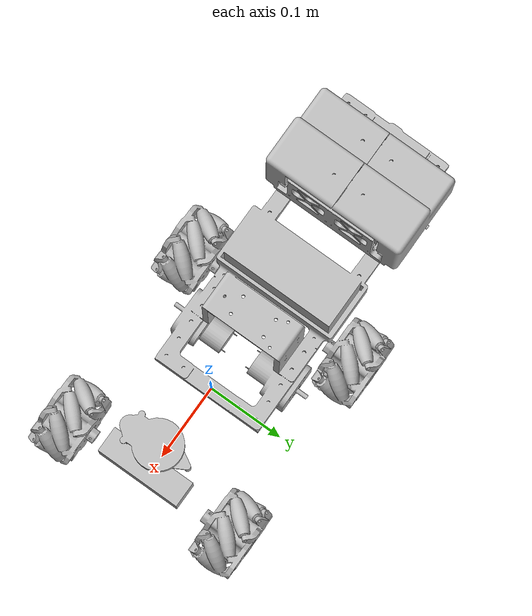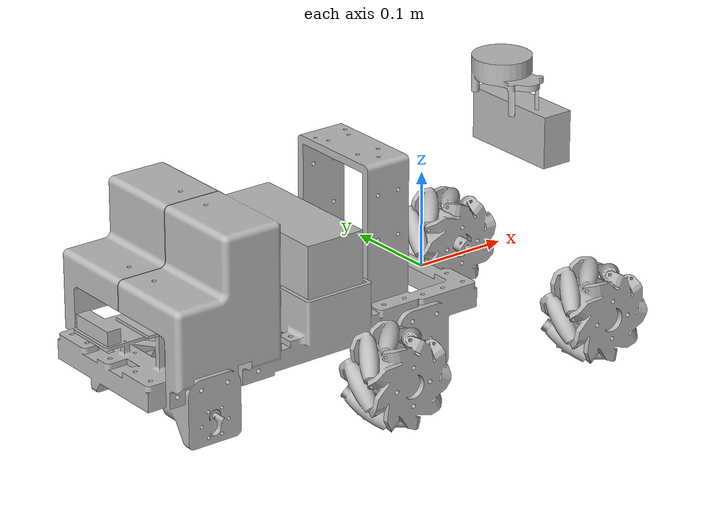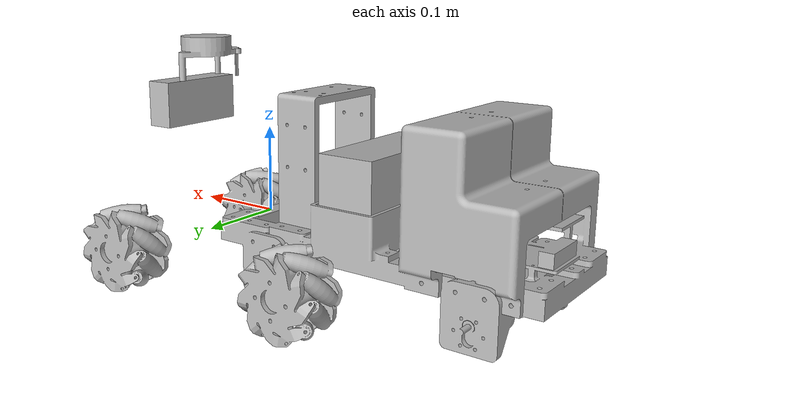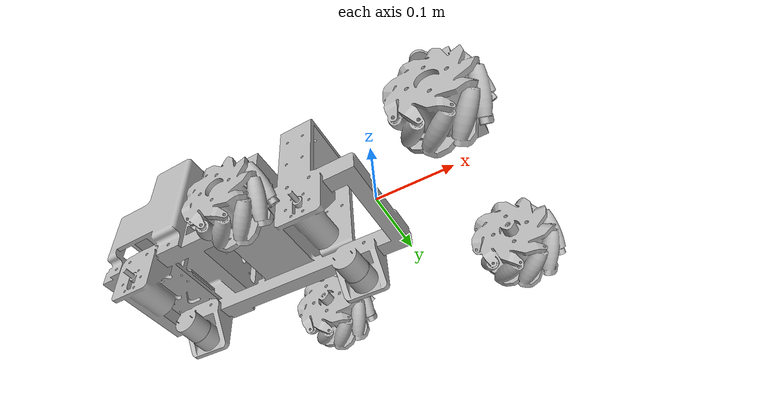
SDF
<?xml version="1.0" ?>

<sdf version="1.7">
  <model name="mecanum_bot">

    <link name="base_footprint">
    </link>

    <link name="base_link">
      <self_collide>false</self_collide>
      <inertial>
        <pose>-0.0010000044107437 0.0 0.04050000384449959 0.0 0.0 0.0</pose>
        <mass>5</mass>
        <inertia>
          <ixx>0.05</ixx>
          <ixy>0</ixy>
          <ixz>0</ixz>
          <iyy>0.05</iyy>
          <iyz>0</iyz>
          <izz>0.05</izz>
        </inertia>
      </inertial>
      <collision name ="Cube">
        <pose>-0.0010000044107437 0.0 0.04050000384449959 0.0 0.0 0.0</pose>
        <geometry>
          <box>
            <size>0.39200000195503235 0.1939999908208847 0.219000001168251038</size>
          </box>
        </geometry>
      </collision>
      <visual name="base_visual">
        <pose>0 0 0 0 -0 0</pose>
        <geometry>
          <mesh>
            <uri>package://mecanum_bot_description/mecanum_bot/meshes/mecanum_bot_chassis.obj</uri>
            <scale>1 1 1</scale>
          </mesh>
        </geometry>
      </visual>
    </link>

    <link name="front_left_wheel">
      <self_collide>false</self_collide>
      <pose>0.125 0.117 -0.041 0 0 0</pose>
      <inertial>
        <mass>0.2</mass>
        <inertia>
          <ixx>0.0001</ixx>
          <ixy>0</ixy>
          <ixz>0</ixz>
          <iyy>0.0001</iyy>
          <iyz>0</iyz>
          <izz>0.0001</izz>
        </inertia>
      </inertial>
      <visual name="front_left_wheel_visual">
        <pose>0 0 0 0 -0 0</pose>
        <geometry>
          <mesh>
            <uri>package://mecanum_bot_description/mecanum_bot/meshes/mecanum_bot_wheel.obj</uri>
            <scale>1 1 1</scale>
          </mesh>
        </geometry>
      </visual>
      <collision name="front_left_wheel_collision">
        <geometry>
          <sphere>
            <radius>0.05</radius>
          </sphere>
        </geometry>
        <surface>
          <friction>
            <ode>
              <mu>10.0</mu>
              <mu2>0.0</mu2>
              <slip1>0.0</slip1>
              <slip2>0.0</slip2>
              <fdir1 ignition:expressed_in="base_link">1 -1 0</fdir1>
            </ode>
          </friction>
          <contact>
            <ode>
              <soft_cfm>0</soft_cfm>
              <soft_erp>0.2</soft_erp>
              <kp>1e+5</kp>
              <kd>1</kd>
              <max_vel>0.01</max_vel>
              <min_depth>0.0001</min_depth>
            </ode>
          </contact>
        </surface>
      </collision>
    </link>

    <link name="rear_left_wheel">
      <self_collide>false</self_collide>
      <pose>-0.125 0.117 -0.041 0 0 0</pose>
      <inertial>
        <mass>0.2</mass>
        <inertia>
          <ixx>0.0001</ixx>
          <ixy>0</ixy>
          <ixz>0</ixz>
          <iyy>0.0001</iyy>
          <iyz>0</iyz>
          <izz>0.0001</izz>
        </inertia>
      </inertial>
      <visual name="rear_left_wheel_visual">
        <pose>0 0 0 0 -0 0</pose>
        <geometry>
          <mesh>
            <uri>package://mecanum_bot_description/mecanum_bot/meshes/mecanum_bot_wheel.obj</uri>
            <scale>1 1 1</scale>
          </mesh>
        </geometry>
      </visual>
      <collision name="rear_left_wheel_collision">
        <geometry>
          <sphere>
            <radius>0.05</radius>
          </sphere>
        </geometry>
        <surface>
          <friction>
            <ode>
              <mu>10.0</mu>
              <mu2>0.0</mu2>
              <slip1>0.0</slip1>
              <slip2>0.0</slip2>
              <fdir1 ignition:expressed_in="base_link">1 1 0</fdir1>
            </ode>
          </friction>
          <contact>
            <ode>
              <soft_cfm>0</soft_cfm>
              <soft_erp>0.2</soft_erp>
              <kp>1e+5</kp>
              <kd>1</kd>
              <max_vel>0.01</max_vel>
              <min_depth>0.0001</min_depth>
            </ode>
          </contact>
        </surface>
      </collision>
    </link>

    <link name="front_right_wheel">
      <self_collide>false</self_collide>
      <pose>0.125 -0.117 -0.041 0 0 0</pose>
      <inertial>
        <mass>0.2</mass>
        <inertia>
          <ixx>0.0001</ixx>
          <ixy>0</ixy>
          <ixz>0</ixz>
          <iyy>0.0001</iyy>
          <iyz>0</iyz>
          <izz>0.0001</izz>
        </inertia>
      </inertial>
      <visual name="front_right_wheel_visual">
        <pose>0 0 0 0 0 -3.14</pose>
        <geometry>
          <mesh>
            <uri>package://mecanum_bot_description/mecanum_bot/meshes/mecanum_bot_wheel.obj</uri>
            <scale>1 1 1</scale>
          </mesh>
        </geometry>
      </visual>
      <collision name="front_right_wheel_collision">
        <geometry>
          <sphere>
            <radius>0.05</radius>
          </sphere>
        </geometry>
        <surface>
          <friction>
            <ode>
              <mu>10.0</mu>
              <mu2>0.0</mu2>
              <slip1>0.0</slip1>
              <slip2>0.0</slip2>
              <fdir1 ignition:expressed_in="base_link">1 1 0</fdir1>
            </ode>
          </friction>
          <contact>
            <ode>
              <soft_cfm>0</soft_cfm>
              <soft_erp>0.2</soft_erp>
              <kp>1e+5</kp>
              <kd>1</kd>
              <max_vel>0.01</max_vel>
              <min_depth>0.0001</min_depth>
            </ode>
          </contact>
        </surface>
      </collision>
    </link>

    <link name="rear_right_wheel">
      <self_collide>false</self_collide>
      <pose>-0.125 -0.117 -0.041 0 0 0</pose>
      <inertial>
        <mass>0.2</mass>
        <inertia>
          <ixx>0.0001</ixx>
          <ixy>0</ixy>
          <ixz>0</ixz>
          <iyy>0.0001</iyy>
          <iyz>0</iyz>
          <izz>0.0001</izz>
        </inertia>
      </inertial>
      <visual name="rear_right_wheel_visual">
        <pose>0 0 0 0 0 -3.14</pose>
        <geometry>
          <mesh>
            <uri>package://mecanum_bot_description/mecanum_bot/meshes/mecanum_bot_wheel.obj</uri>
            <scale>1 1 1</scale>
          </mesh>
        </geometry>
      </visual>
      <collision name="rear_right_wheel_collision">
        <geometry>
          <sphere>
            <radius>0.05</radius>
          </sphere>
        </geometry>
        <surface>
          <friction>
            <ode>
              <mu>10.0</mu>
              <mu2>0.0</mu2>
              <slip1>0.0</slip1>
              <slip2>0.0</slip2>
              <fdir1 ignition:expressed_in="base_link">1 -1 0</fdir1>
            </ode>
          </friction>
          <contact>
            <ode>
              <soft_cfm>0</soft_cfm>
              <soft_erp>0.2</soft_erp>
              <kp>1e+5</kp>
              <kd>1</kd>
              <max_vel>0.01</max_vel>
              <min_depth>0.0001</min_depth>
            </ode>
          </contact>
        </surface>
      </collision>
    </link>

    <link name="base_scan">
      <pose>0.1 0. 0.1924 0 0 0</pose>
      <inertial>
        <inertia>
          <ixx>0.0001</ixx>
          <ixy>0.000</ixy>
          <ixz>0.000</ixz>
          <iyy>0.0001</iyy>
          <iyz>0.000</iyz>
          <izz>0.0001</izz>
        </inertia>
        <mass>0.125</mass>
      </inertial>
      <collision name="lidar_sensor_collision">
        <geometry>
          <box>
            <size>0.06041127070784569 0.09593304991722107 0.0502999983727932</size>
          </box>
        </geometry>
      </collision>
      <visual name="lidar_sensor_visual">
        <geometry>
          <mesh>
            <uri>package://mecanum_bot_description/mecanum_bot/meshes/ydlidar_x2l.obj</uri>
            <scale>1.0 1.0 1.0</scale>
          </mesh>
        </geometry>
      </visual>
      <sensor name="ydlidar_x2l" type="gpu_lidar">
        <always_on>true</always_on>
        <gz_frame_id>base_scan</gz_frame_id>
        <topic>scan</topic>
        <update_rate>8</update_rate>
        <visualize>true</visualize>
        <lidar>
          <scan>
            <horizontal>
              <samples>360</samples>
              <resolution>1.000000</resolution>
              <min_angle>-3.14</min_angle>
              <max_angle>3.14</max_angle>
            </horizontal>
          </scan>
          <range>
            <min>0.08</min>
            <max>12.0</max>
            <resolution>0.015000</resolution>
          </range>
          <noise>
            <type>gaussian</type>
            <mean>0.0</mean>
            <stddev>0.01</stddev>
          </noise>
        </lidar>
      </sensor>
    </link>

    <link name="oak-d_frame">
      <pose>0.143 0.0 0.136 0 0 0</pose>
      <inertial>
        <mass>0.1</mass>
      </inertial>
      <collision name="collision">
        <pose>-0.0165 0.0 -0.01525 0 0 0</pose>
        <geometry>
          <box>
            <size>0.033 0.11 0.054</size>
          </box>
        </geometry>
      </collision>
      <visual name="visual">
        <pose>-0.0165 0.0 -0.01525 0 0 0</pose>
        <geometry>
          <box>
            <size>0.033 0.11 0.054</size>
          </box>
        </geometry>
        <material name="black">
            <color rgba="0 0 0 1"/>
        </material>
      </visual>
      <sensor name="rgbd_camera" type="rgbd_camera">
        <camera>
          <horizontal_fov>1.204</horizontal_fov>
          <image>
            <width>1280</width>
            <height>720</height>
            <format>B8G8R8</format>
          </image>
          <clip>
            <near>0.1</near>
            <far>100</far>
          </clip>
          <depth_camera>
            <clip>
              <near>0.012</near>
              <far>10</far>
            </clip>
          </depth_camera>
          <noise>
            <type>gaussian</type>
            <mean>0.0</mean>
            <stddev>0.01</stddev>
          </noise>
          <distortion>
            <k1>0.080921</k1>
            <k2>-0.244505</k2>
            <k3>0.006909</k3>
            <p1>0.015070</p1>
            <p2>0.000000</p2>
            <center>0.5 0.5</center>
          </distortion>
          <lens>
            <type>stereographic</type>
            <intrinsics>
              <fx>1049.904541</fx>
              <fy>1048.576171</fy>
              <cx>635.746276</cx>
              <cy>364.500946</cy>
              <s>0.000000</s>
            </intrinsics>
          </lens>
        </camera>
        <always_on>1</always_on>
        <update_rate>15</update_rate>
        <visualize>true</visualize>
        <topic>rgbd_camera</topic>
        <enable_metrics>true</enable_metrics>
        <gz_frame_id>oak_rgb_camera_optical_frame</gz_frame_id>
      </sensor>
    </link>

    <joint name="front_left_wheel_joint" type="revolute">
      <parent>base_link</parent>
      <child>front_left_wheel</child>
      <axis>
        <xyz>0 1 0</xyz>
        <limit>
          <lower>-1.79769e+308</lower>
          <upper>1.79769e+308</upper>
        </limit>
      </axis>
    </joint>

    <joint name="rear_left_wheel_joint" type="revolute">
      <parent>base_link</parent>
      <child>rear_left_wheel</child>
      <axis>
        <xyz>0 1 0</xyz>
        <limit>
          <lower>-1.79769e+308</lower>
          <upper>1.79769e+308</upper>
        </limit>
      </axis>
    </joint>

    <joint name="front_right_wheel_joint" type="revolute">
      <parent>base_link</parent>
      <child>front_right_wheel</child>
      <axis>
        <xyz>0 1 0</xyz>
        <limit>
          <lower>-1.79769e+308</lower>
          <upper>1.79769e+308</upper>
        </limit>
      </axis>
    </joint>

    <joint name="rear_right_wheel_joint" type="revolute">
      <parent>base_link</parent>
      <child>rear_right_wheel</child>
      <axis>
        <xyz>0 1 0</xyz>
        <limit>
          <lower>-1.79769e+308</lower>
          <upper>1.79769e+308</upper>
        </limit>
      </axis>
    </joint>

    <joint name="base_scan_joint" type="fixed">
      <parent>base_link</parent>
      <child>base_scan</child>
    </joint>

    <joint name="base_link_joint" type="fixed">
      <parent>base_footprint</parent>
      <child>base_link</child>
    </joint>

    <joint name="base_link_oakd_joint" type="fixed">
      <parent>base_link</parent>
      <child>oak-d_frame</child>
    </joint>

    <!-- The MecanumDrive plugin has not implemented any odometry publishing logic. -->
    <plugin
      filename="ignition-gazebo-mecanum-drive-system"
      name="ignition::gazebo::systems::MecanumDrive">
      <front_left_joint>front_left_wheel_joint</front_left_joint>
      <front_right_joint>front_right_wheel_joint</front_right_joint>
      <back_left_joint>rear_left_wheel_joint</back_left_joint>
      <back_right_joint>rear_right_wheel_joint</back_right_joint>
      <wheel_separation>0.234</wheel_separation>
      <wheelbase>0.25</wheelbase>
      <wheel_radius>0.048</wheel_radius>
      <min_acceleration>-0.5</min_acceleration>
      <max_acceleration>0.5</max_acceleration>
    </plugin>

    <plugin
      filename="ignition-gazebo-odometry-publisher-system"
      name="ignition::gazebo::systems::OdometryPublisher">
      <robot_base_frame>base_footprint</robot_base_frame>
      <odom_frame>wheel_odom</odom_frame>
      <odom_publish_frequency>50</odom_publish_frequency>
      <gaussian_noise>0.1</gaussian_noise>
    </plugin>

    <plugin
      filename="ignition-gazebo-joint-state-publisher-system"
      name="ignition::gazebo::systems::JointStatePublisher">
    </plugin>

  </model>
</sdf>
